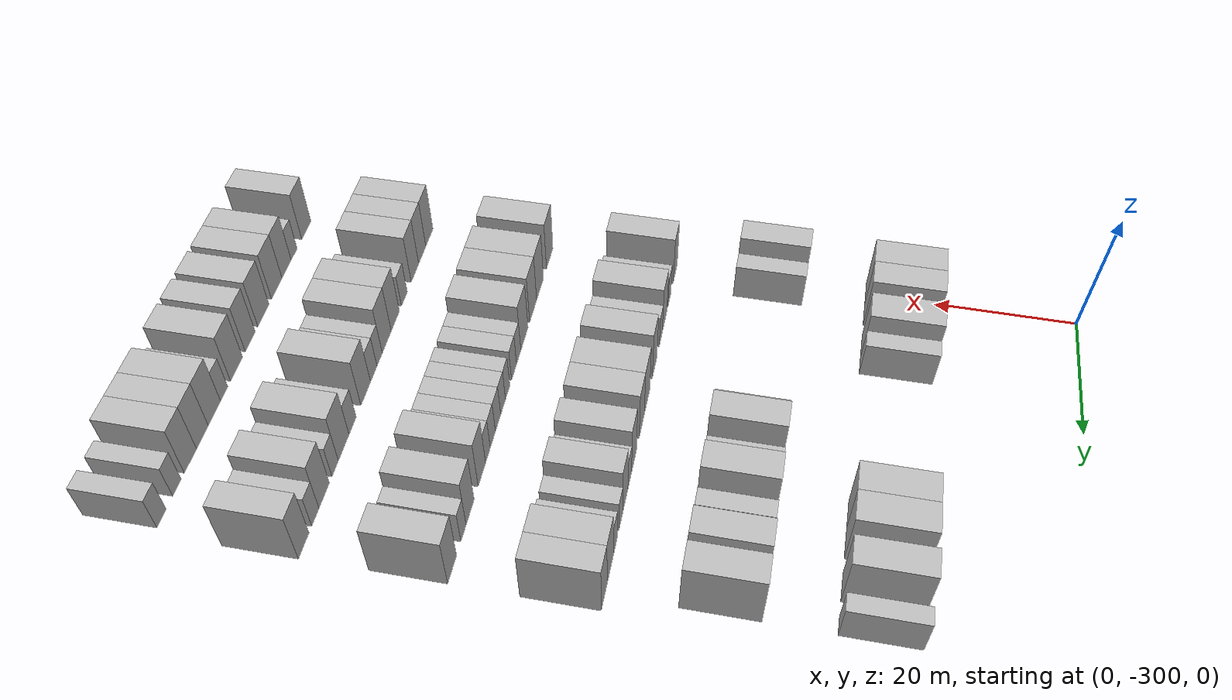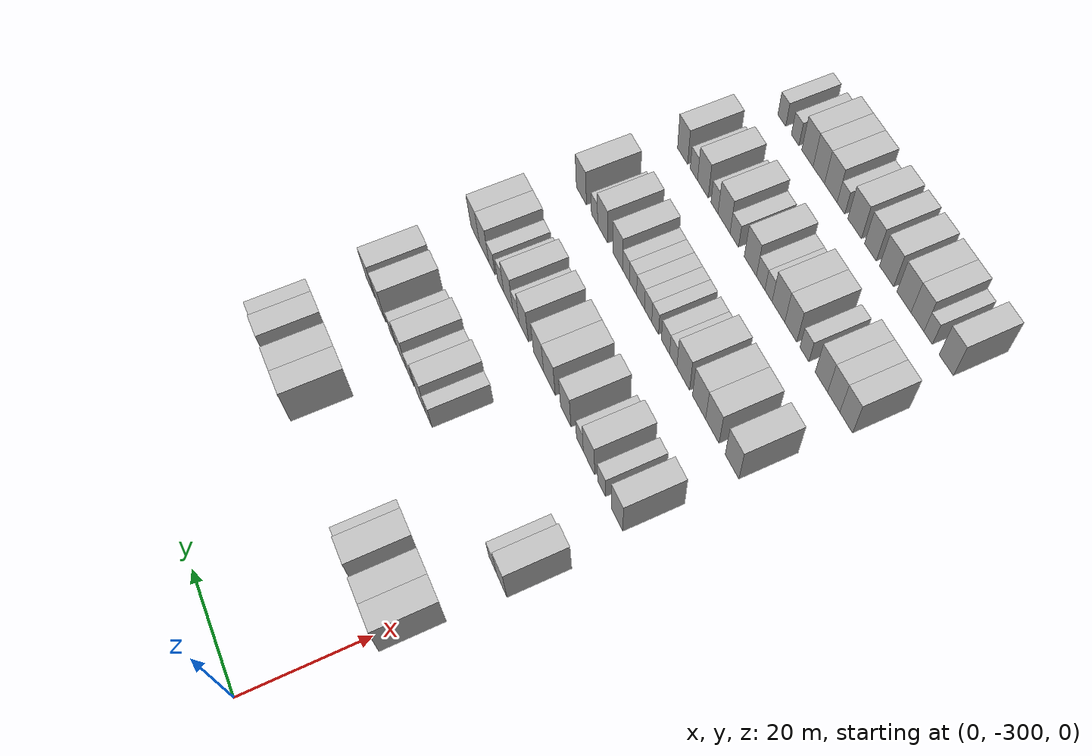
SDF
<sdf version="1.6">
 <world name="default">
  <model name="building_13">
   <static>1</static>
   <pose>25.0000 -300.2436 0 0.000000 0.000000 0.000000</pose>
   <link name="link">
    <pose>0 0 4.50 0 0 0</pose>
    <collision name="collision"><geometry><box><size>10.0000 4.3142 9.0000</size></box></geometry></collision>
    <visual name="visual">
     <cast_shadows>0</cast_shadows>
     <geometry><box><size>10.0000 4.3142 9.0000</size></box></geometry>
     <material>
      <script>
       <uri>model://HANNAS_wall/materials/scripts</uri>
       <uri>model://HANNAS_wall/materials/textures</uri>
       <name>vrc/HANNAS_wall</name>
      </script>
     </material>
    </visual>
   </link>
  </model>
  <model name="building_14">
   <static>1</static>
   <pose>25.0000 -296.0442 0 0.000000 0.000000 0.000000</pose>
   <link name="link">
    <pose>0 0 4.50 0 0 0</pose>
    <collision name="collision"><geometry><box><size>10.0000 4.0846 9.0000</size></box></geometry></collision>
    <visual name="visual">
     <cast_shadows>0</cast_shadows>
     <geometry><box><size>10.0000 4.0846 9.0000</size></box></geometry>
     <material>
      <script>
       <uri>model://HANNAS_wall/materials/scripts</uri>
       <uri>model://HANNAS_wall/materials/textures</uri>
       <name>vrc/HANNAS_wall</name>
      </script>
     </material>
    </visual>
   </link>
  </model>
  <model name="building_15">
   <static>1</static>
   <pose>25.0000 -289.8021 0 0.000000 0.000000 0.000000</pose>
   <link name="link">
    <pose>0 0 4.50 0 0 0</pose>
    <collision name="collision"><geometry><box><size>10.0000 4.3996 9.0000</size></box></geometry></collision>
    <visual name="visual">
     <cast_shadows>0</cast_shadows>
     <geometry><box><size>10.0000 4.3996 9.0000</size></box></geometry>
     <material>
      <script>
       <uri>model://HANNAS_wall/materials/scripts</uri>
       <uri>model://HANNAS_wall/materials/textures</uri>
       <name>vrc/HANNAS_wall</name>
      </script>
     </material>
    </visual>
   </link>
  </model>
  <model name="building_16">
   <static>1</static>
   <pose>25.0000 -286.2306 0 0.000000 0.000000 0.000000</pose>
   <link name="link">
    <pose>0 0 3.00 0 0 0</pose>
    <collision name="collision"><geometry><box><size>10.0000 2.7434 6.0000</size></box></geometry></collision>
    <visual name="visual">
     <cast_shadows>0</cast_shadows>
     <geometry><box><size>10.0000 2.7434 6.0000</size></box></geometry>
     <material>
      <script>
       <uri>model://HANNAS_wall/materials/scripts</uri>
       <uri>model://HANNAS_wall/materials/textures</uri>
       <name>vrc/HANNAS_wall</name>
      </script>
     </material>
    </visual>
   </link>
  </model>
  <model name="building_17">
   <static>1</static>
   <pose>25.0000 -261.4636 0 0.000000 0.000000 0.000000</pose>
   <link name="link">
    <pose>0 0 4.50 0 0 0</pose>
    <collision name="collision"><geometry><box><size>10.0000 4.2635 9.0000</size></box></geometry></collision>
    <visual name="visual">
     <cast_shadows>0</cast_shadows>
     <geometry><box><size>10.0000 4.2635 9.0000</size></box></geometry>
     <material>
      <script>
       <uri>model://HANNAS_wall/materials/scripts</uri>
       <uri>model://HANNAS_wall/materials/textures</uri>
       <name>vrc/HANNAS_wall</name>
      </script>
     </material>
    </visual>
   </link>
  </model>
  <model name="building_18">
   <static>1</static>
   <pose>25.0000 -257.1325 0 0.000000 0.000000 0.000000</pose>
   <link name="link">
    <pose>0 0 4.50 0 0 0</pose>
    <collision name="collision"><geometry><box><size>10.0000 4.3989 9.0000</size></box></geometry></collision>
    <visual name="visual">
     <cast_shadows>0</cast_shadows>
     <geometry><box><size>10.0000 4.3989 9.0000</size></box></geometry>
     <material>
      <script>
       <uri>model://HANNAS_wall/materials/scripts</uri>
       <uri>model://HANNAS_wall/materials/textures</uri>
       <name>vrc/HANNAS_wall</name>
      </script>
     </material>
    </visual>
   </link>
  </model>
  <model name="building_19">
   <static>1</static>
   <pose>25.0000 -250.9067 0 0.000000 0.000000 0.000000</pose>
   <link name="link">
    <pose>0 0 4.50 0 0 0</pose>
    <collision name="collision"><geometry><box><size>10.0000 4.0527 9.0000</size></box></geometry></collision>
    <visual name="visual">
     <cast_shadows>0</cast_shadows>
     <geometry><box><size>10.0000 4.0527 9.0000</size></box></geometry>
     <material>
      <script>
       <uri>model://HANNAS_wall/materials/scripts</uri>
       <uri>model://HANNAS_wall/materials/textures</uri>
       <name>vrc/HANNAS_wall</name>
      </script>
     </material>
    </visual>
   </link>
  </model>
  <model name="building_20">
   <static>1</static>
   <pose>25.0000 -245.6302 0 0.000000 0.000000 0.000000</pose>
   <link name="link">
    <pose>0 0 3.00 0 0 0</pose>
    <collision name="collision"><geometry><box><size>10.0000 2.5002 6.0000</size></box></geometry></collision>
    <visual name="visual">
     <cast_shadows>0</cast_shadows>
     <geometry><box><size>10.0000 2.5002 6.0000</size></box></geometry>
     <material>
      <script>
       <uri>model://HANNAS_wall/materials/scripts</uri>
       <uri>model://HANNAS_wall/materials/textures</uri>
       <name>vrc/HANNAS_wall</name>
      </script>
     </material>
    </visual>
   </link>
  </model>
  <model name="building_187">
   <static>1</static>
   <pose>44.0000 -300.9018 0 0.000000 0.000000 0.000000</pose>
   <link name="link">
    <pose>0 0 4.50 0 0 0</pose>
    <collision name="collision"><geometry><box><size>10.0000 3.7778 9.0000</size></box></geometry></collision>
    <visual name="visual">
     <cast_shadows>0</cast_shadows>
     <geometry><box><size>10.0000 3.7778 9.0000</size></box></geometry>
     <material>
      <script>
       <uri>model://HANNAS_wall/materials/scripts</uri>
       <uri>model://HANNAS_wall/materials/textures</uri>
       <name>vrc/HANNAS_wall</name>
      </script>
     </material>
    </visual>
   </link>
  </model>
  <model name="building_188">
   <static>1</static>
   <pose>44.0000 -297.5915 0 0.000000 0.000000 0.000000</pose>
   <link name="link">
    <pose>0 0 3.00 0 0 0</pose>
    <collision name="collision"><geometry><box><size>10.0000 2.8428 6.0000</size></box></geometry></collision>
    <visual name="visual">
     <cast_shadows>0</cast_shadows>
     <geometry><box><size>10.0000 2.8428 6.0000</size></box></geometry>
     <material>
      <script>
       <uri>model://HANNAS_wall/materials/scripts</uri>
       <uri>model://HANNAS_wall/materials/textures</uri>
       <name>vrc/HANNAS_wall</name>
      </script>
     </material>
    </visual>
   </link>
  </model>
  <model name="building_189">
   <static>1</static>
   <pose>44.0000 -272.3884 0 0.000000 0.000000 0.000000</pose>
   <link name="link">
    <pose>0 0 3.00 0 0 0</pose>
    <collision name="collision"><geometry><box><size>10.0000 2.5211 6.0000</size></box></geometry></collision>
    <visual name="visual">
     <cast_shadows>0</cast_shadows>
     <geometry><box><size>10.0000 2.5211 6.0000</size></box></geometry>
     <material>
      <script>
       <uri>model://HANNAS_wall/materials/scripts</uri>
       <uri>model://HANNAS_wall/materials/textures</uri>
       <name>vrc/HANNAS_wall</name>
      </script>
     </material>
    </visual>
   </link>
  </model>
  <model name="building_190">
   <static>1</static>
   <pose>44.0000 -269.0783 0 0.000000 0.000000 0.000000</pose>
   <link name="link">
    <pose>0 0 4.50 0 0 0</pose>
    <collision name="collision"><geometry><box><size>10.0000 4.0991 9.0000</size></box></geometry></collision>
    <visual name="visual">
     <cast_shadows>0</cast_shadows>
     <geometry><box><size>10.0000 4.0991 9.0000</size></box></geometry>
     <material>
      <script>
       <uri>model://HANNAS_wall/materials/scripts</uri>
       <uri>model://HANNAS_wall/materials/textures</uri>
       <name>vrc/HANNAS_wall</name>
      </script>
     </material>
    </visual>
   </link>
  </model>
  <model name="building_191">
   <static>1</static>
   <pose>44.0000 -264.5740 0 0.000000 0.000000 0.000000</pose>
   <link name="link">
    <pose>0 0 3.00 0 0 0</pose>
    <collision name="collision"><geometry><box><size>10.0000 2.9095 6.0000</size></box></geometry></collision>
    <visual name="visual">
     <cast_shadows>0</cast_shadows>
     <geometry><box><size>10.0000 2.9095 6.0000</size></box></geometry>
     <material>
      <script>
       <uri>model://HANNAS_wall/materials/scripts</uri>
       <uri>model://HANNAS_wall/materials/textures</uri>
       <name>vrc/HANNAS_wall</name>
      </script>
     </material>
    </visual>
   </link>
  </model>
  <model name="building_192">
   <static>1</static>
   <pose>44.0000 -261.0507 0 0.000000 0.000000 0.000000</pose>
   <link name="link">
    <pose>0 0 4.50 0 0 0</pose>
    <collision name="collision"><geometry><box><size>10.0000 4.1371 9.0000</size></box></geometry></collision>
    <visual name="visual">
     <cast_shadows>0</cast_shadows>
     <geometry><box><size>10.0000 4.1371 9.0000</size></box></geometry>
     <material>
      <script>
       <uri>model://HANNAS_wall/materials/scripts</uri>
       <uri>model://HANNAS_wall/materials/textures</uri>
       <name>vrc/HANNAS_wall</name>
      </script>
     </material>
    </visual>
   </link>
  </model>
  <model name="building_193">
   <static>1</static>
   <pose>44.0000 -256.6867 0 0.000000 0.000000 0.000000</pose>
   <link name="link">
    <pose>0 0 3.00 0 0 0</pose>
    <collision name="collision"><geometry><box><size>10.0000 2.5908 6.0000</size></box></geometry></collision>
    <visual name="visual">
     <cast_shadows>0</cast_shadows>
     <geometry><box><size>10.0000 2.5908 6.0000</size></box></geometry>
     <material>
      <script>
       <uri>model://HANNAS_wall/materials/scripts</uri>
       <uri>model://HANNAS_wall/materials/textures</uri>
       <name>vrc/HANNAS_wall</name>
      </script>
     </material>
    </visual>
   </link>
  </model>
  <model name="building_194">
   <static>1</static>
   <pose>44.0000 -251.4506 0 0.000000 0.000000 0.000000</pose>
   <link name="link">
    <pose>0 0 4.50 0 0 0</pose>
    <collision name="collision"><geometry><box><size>10.0000 3.8815 9.0000</size></box></geometry></collision>
    <visual name="visual">
     <cast_shadows>0</cast_shadows>
     <geometry><box><size>10.0000 3.8815 9.0000</size></box></geometry>
     <material>
      <script>
       <uri>model://HANNAS_wall/materials/scripts</uri>
       <uri>model://HANNAS_wall/materials/textures</uri>
       <name>vrc/HANNAS_wall</name>
      </script>
     </material>
    </visual>
   </link>
  </model>
  <model name="building_195">
   <static>1</static>
   <pose>44.0000 -246.4700 0 0.000000 0.000000 0.000000</pose>
   <link name="link">
    <pose>0 0 4.50 0 0 0</pose>
    <collision name="collision"><geometry><box><size>10.0000 4.0797 9.0000</size></box></geometry></collision>
    <visual name="visual">
     <cast_shadows>0</cast_shadows>
     <geometry><box><size>10.0000 4.0797 9.0000</size></box></geometry>
     <material>
      <script>
       <uri>model://HANNAS_wall/materials/scripts</uri>
       <uri>model://HANNAS_wall/materials/textures</uri>
       <name>vrc/HANNAS_wall</name>
      </script>
     </material>
    </visual>
   </link>
  </model>
  <model name="building_354">
   <static>1</static>
   <pose>63.0000 -298.8192 0 0.000000 0.000000 0.000000</pose>
   <link name="link">
    <pose>0 0 4.50 0 0 0</pose>
    <collision name="collision"><geometry><box><size>10.0000 3.9321 9.0000</size></box></geometry></collision>
    <visual name="visual">
     <cast_shadows>0</cast_shadows>
     <geometry><box><size>10.0000 3.9321 9.0000</size></box></geometry>
     <material>
      <script>
       <uri>model://HANNAS_wall/materials/scripts</uri>
       <uri>model://HANNAS_wall/materials/textures</uri>
       <name>vrc/HANNAS_wall</name>
      </script>
     </material>
    </visual>
   </link>
  </model>
  <model name="building_355">
   <static>1</static>
   <pose>63.0000 -293.4392 0 0.000000 0.000000 0.000000</pose>
   <link name="link">
    <pose>0 0 3.00 0 0 0</pose>
    <collision name="collision"><geometry><box><size>10.0000 2.8278 6.0000</size></box></geometry></collision>
    <visual name="visual">
     <cast_shadows>0</cast_shadows>
     <geometry><box><size>10.0000 2.8278 6.0000</size></box></geometry>
     <material>
      <script>
       <uri>model://HANNAS_wall/materials/scripts</uri>
       <uri>model://HANNAS_wall/materials/textures</uri>
       <name>vrc/HANNAS_wall</name>
      </script>
     </material>
    </visual>
   </link>
  </model>
  <model name="building_356">
   <static>1</static>
   <pose>63.0000 -288.9780 0 0.000000 0.000000 0.000000</pose>
   <link name="link">
    <pose>0 0 4.50 0 0 0</pose>
    <collision name="collision"><geometry><box><size>10.0000 4.0947 9.0000</size></box></geometry></collision>
    <visual name="visual">
     <cast_shadows>0</cast_shadows>
     <geometry><box><size>10.0000 4.0947 9.0000</size></box></geometry>
     <material>
      <script>
       <uri>model://HANNAS_wall/materials/scripts</uri>
       <uri>model://HANNAS_wall/materials/textures</uri>
       <name>vrc/HANNAS_wall</name>
      </script>
     </material>
    </visual>
   </link>
  </model>
  <model name="building_357">
   <static>1</static>
   <pose>63.0000 -285.6925 0 0.000000 0.000000 0.000000</pose>
   <link name="link">
    <pose>0 0 3.00 0 0 0</pose>
    <collision name="collision"><geometry><box><size>10.0000 2.4763 6.0000</size></box></geometry></collision>
    <visual name="visual">
     <cast_shadows>0</cast_shadows>
     <geometry><box><size>10.0000 2.4763 6.0000</size></box></geometry>
     <material>
      <script>
       <uri>model://HANNAS_wall/materials/scripts</uri>
       <uri>model://HANNAS_wall/materials/textures</uri>
       <name>vrc/HANNAS_wall</name>
      </script>
     </material>
    </visual>
   </link>
  </model>
  <model name="building_358">
   <static>1</static>
   <pose>63.0000 -280.5148 0 0.000000 0.000000 0.000000</pose>
   <link name="link">
    <pose>0 0 4.50 0 0 0</pose>
    <collision name="collision"><geometry><box><size>10.0000 3.8790 9.0000</size></box></geometry></collision>
    <visual name="visual">
     <cast_shadows>0</cast_shadows>
     <geometry><box><size>10.0000 3.8790 9.0000</size></box></geometry>
     <material>
      <script>
       <uri>model://HANNAS_wall/materials/scripts</uri>
       <uri>model://HANNAS_wall/materials/textures</uri>
       <name>vrc/HANNAS_wall</name>
      </script>
     </material>
    </visual>
   </link>
  </model>
  <model name="building_359">
   <static>1</static>
   <pose>63.0000 -274.3761 0 0.000000 0.000000 0.000000</pose>
   <link name="link">
    <pose>0 0 4.50 0 0 0</pose>
    <collision name="collision"><geometry><box><size>10.0000 4.3984 9.0000</size></box></geometry></collision>
    <visual name="visual">
     <cast_shadows>0</cast_shadows>
     <geometry><box><size>10.0000 4.3984 9.0000</size></box></geometry>
     <material>
      <script>
       <uri>model://HANNAS_wall/materials/scripts</uri>
       <uri>model://HANNAS_wall/materials/textures</uri>
       <name>vrc/HANNAS_wall</name>
      </script>
     </material>
    </visual>
   </link>
  </model>
  <model name="building_360">
   <static>1</static>
   <pose>63.0000 -270.1939 0 0.000000 0.000000 0.000000</pose>
   <link name="link">
    <pose>0 0 4.50 0 0 0</pose>
    <collision name="collision"><geometry><box><size>10.0000 3.9660 9.0000</size></box></geometry></collision>
    <visual name="visual">
     <cast_shadows>0</cast_shadows>
     <geometry><box><size>10.0000 3.9660 9.0000</size></box></geometry>
     <material>
      <script>
       <uri>model://HANNAS_wall/materials/scripts</uri>
       <uri>model://HANNAS_wall/materials/textures</uri>
       <name>vrc/HANNAS_wall</name>
      </script>
     </material>
    </visual>
   </link>
  </model>
  <model name="building_361">
   <static>1</static>
   <pose>63.0000 -264.3541 0 0.000000 0.000000 0.000000</pose>
   <link name="link">
    <pose>0 0 4.50 0 0 0</pose>
    <collision name="collision"><geometry><box><size>10.0000 3.7135 9.0000</size></box></geometry></collision>
    <visual name="visual">
     <cast_shadows>0</cast_shadows>
     <geometry><box><size>10.0000 3.7135 9.0000</size></box></geometry>
     <material>
      <script>
       <uri>model://HANNAS_wall/materials/scripts</uri>
       <uri>model://HANNAS_wall/materials/textures</uri>
       <name>vrc/HANNAS_wall</name>
      </script>
     </material>
    </visual>
   </link>
  </model>
  <model name="building_362">
   <static>1</static>
   <pose>63.0000 -261.2088 0 0.000000 0.000000 0.000000</pose>
   <link name="link">
    <pose>0 0 3.00 0 0 0</pose>
    <collision name="collision"><geometry><box><size>10.0000 2.5772 6.0000</size></box></geometry></collision>
    <visual name="visual">
     <cast_shadows>0</cast_shadows>
     <geometry><box><size>10.0000 2.5772 6.0000</size></box></geometry>
     <material>
      <script>
       <uri>model://HANNAS_wall/materials/scripts</uri>
       <uri>model://HANNAS_wall/materials/textures</uri>
       <name>vrc/HANNAS_wall</name>
      </script>
     </material>
    </visual>
   </link>
  </model>
  <model name="building_363">
   <static>1</static>
   <pose>63.0000 -258.0411 0 0.000000 0.000000 0.000000</pose>
   <link name="link">
    <pose>0 0 4.50 0 0 0</pose>
    <collision name="collision"><geometry><box><size>10.0000 3.7582 9.0000</size></box></geometry></collision>
    <visual name="visual">
     <cast_shadows>0</cast_shadows>
     <geometry><box><size>10.0000 3.7582 9.0000</size></box></geometry>
     <material>
      <script>
       <uri>model://HANNAS_wall/materials/scripts</uri>
       <uri>model://HANNAS_wall/materials/textures</uri>
       <name>vrc/HANNAS_wall</name>
      </script>
     </material>
    </visual>
   </link>
  </model>
  <model name="building_364">
   <static>1</static>
   <pose>63.0000 -254.8826 0 0.000000 0.000000 0.000000</pose>
   <link name="link">
    <pose>0 0 3.00 0 0 0</pose>
    <collision name="collision"><geometry><box><size>10.0000 2.5587 6.0000</size></box></geometry></collision>
    <visual name="visual">
     <cast_shadows>0</cast_shadows>
     <geometry><box><size>10.0000 2.5587 6.0000</size></box></geometry>
     <material>
      <script>
       <uri>model://HANNAS_wall/materials/scripts</uri>
       <uri>model://HANNAS_wall/materials/textures</uri>
       <name>vrc/HANNAS_wall</name>
      </script>
     </material>
    </visual>
   </link>
  </model>
  <model name="building_365">
   <static>1</static>
   <pose>63.0000 -251.2598 0 0.000000 0.000000 0.000000</pose>
   <link name="link">
    <pose>0 0 3.00 0 0 0</pose>
    <collision name="collision"><geometry><box><size>10.0000 2.6868 6.0000</size></box></geometry></collision>
    <visual name="visual">
     <cast_shadows>0</cast_shadows>
     <geometry><box><size>10.0000 2.6868 6.0000</size></box></geometry>
     <material>
      <script>
       <uri>model://HANNAS_wall/materials/scripts</uri>
       <uri>model://HANNAS_wall/materials/textures</uri>
       <name>vrc/HANNAS_wall</name>
      </script>
     </material>
    </visual>
   </link>
  </model>
  <model name="building_366">
   <static>1</static>
   <pose>63.0000 -247.9365 0 0.000000 0.000000 0.000000</pose>
   <link name="link">
    <pose>0 0 4.50 0 0 0</pose>
    <collision name="collision"><geometry><box><size>10.0000 3.9598 9.0000</size></box></geometry></collision>
    <visual name="visual">
     <cast_shadows>0</cast_shadows>
     <geometry><box><size>10.0000 3.9598 9.0000</size></box></geometry>
     <material>
      <script>
       <uri>model://HANNAS_wall/materials/scripts</uri>
       <uri>model://HANNAS_wall/materials/textures</uri>
       <name>vrc/HANNAS_wall</name>
      </script>
     </material>
    </visual>
   </link>
  </model>
  <model name="building_367">
   <static>1</static>
   <pose>63.0000 -244.1201 0 0.000000 0.000000 0.000000</pose>
   <link name="link">
    <pose>0 0 4.50 0 0 0</pose>
    <collision name="collision"><geometry><box><size>10.0000 3.6729 9.0000</size></box></geometry></collision>
    <visual name="visual">
     <cast_shadows>0</cast_shadows>
     <geometry><box><size>10.0000 3.6729 9.0000</size></box></geometry>
     <material>
      <script>
       <uri>model://HANNAS_wall/materials/scripts</uri>
       <uri>model://HANNAS_wall/materials/textures</uri>
       <name>vrc/HANNAS_wall</name>
      </script>
     </material>
    </visual>
   </link>
  </model>
  <model name="building_524">
   <static>1</static>
   <pose>82.0000 -298.4852 0 0.000000 0.000000 0.000000</pose>
   <link name="link">
    <pose>0 0 4.50 0 0 0</pose>
    <collision name="collision"><geometry><box><size>10.0000 4.3851 9.0000</size></box></geometry></collision>
    <visual name="visual">
     <cast_shadows>0</cast_shadows>
     <geometry><box><size>10.0000 4.3851 9.0000</size></box></geometry>
     <material>
      <script>
       <uri>model://HANNAS_wall/materials/scripts</uri>
       <uri>model://HANNAS_wall/materials/textures</uri>
       <name>vrc/HANNAS_wall</name>
      </script>
     </material>
    </visual>
   </link>
  </model>
  <model name="building_525">
   <static>1</static>
   <pose>82.0000 -292.0738 0 0.000000 0.000000 0.000000</pose>
   <link name="link">
    <pose>0 0 4.50 0 0 0</pose>
    <collision name="collision"><geometry><box><size>10.0000 4.4378 9.0000</size></box></geometry></collision>
    <visual name="visual">
     <cast_shadows>0</cast_shadows>
     <geometry><box><size>10.0000 4.4378 9.0000</size></box></geometry>
     <material>
      <script>
       <uri>model://HANNAS_wall/materials/scripts</uri>
       <uri>model://HANNAS_wall/materials/textures</uri>
       <name>vrc/HANNAS_wall</name>
      </script>
     </material>
    </visual>
   </link>
  </model>
  <model name="building_526">
   <static>1</static>
   <pose>82.0000 -287.6563 0 0.000000 0.000000 0.000000</pose>
   <link name="link">
    <pose>0 0 4.50 0 0 0</pose>
    <collision name="collision"><geometry><box><size>10.0000 4.3971 9.0000</size></box></geometry></collision>
    <visual name="visual">
     <cast_shadows>0</cast_shadows>
     <geometry><box><size>10.0000 4.3971 9.0000</size></box></geometry>
     <material>
      <script>
       <uri>model://HANNAS_wall/materials/scripts</uri>
       <uri>model://HANNAS_wall/materials/textures</uri>
       <name>vrc/HANNAS_wall</name>
      </script>
     </material>
    </visual>
   </link>
  </model>
  <model name="building_527">
   <static>1</static>
   <pose>82.0000 -282.2700 0 0.000000 0.000000 0.000000</pose>
   <link name="link">
    <pose>0 0 4.50 0 0 0</pose>
    <collision name="collision"><geometry><box><size>10.0000 4.3756 9.0000</size></box></geometry></collision>
    <visual name="visual">
     <cast_shadows>0</cast_shadows>
     <geometry><box><size>10.0000 4.3756 9.0000</size></box></geometry>
     <material>
      <script>
       <uri>model://HANNAS_wall/materials/scripts</uri>
       <uri>model://HANNAS_wall/materials/textures</uri>
       <name>vrc/HANNAS_wall</name>
      </script>
     </material>
    </visual>
   </link>
  </model>
  <model name="building_528">
   <static>1</static>
   <pose>82.0000 -278.8097 0 0.000000 0.000000 0.000000</pose>
   <link name="link">
    <pose>0 0 3.00 0 0 0</pose>
    <collision name="collision"><geometry><box><size>10.0000 2.5451 6.0000</size></box></geometry></collision>
    <visual name="visual">
     <cast_shadows>0</cast_shadows>
     <geometry><box><size>10.0000 2.5451 6.0000</size></box></geometry>
     <material>
      <script>
       <uri>model://HANNAS_wall/materials/scripts</uri>
       <uri>model://HANNAS_wall/materials/textures</uri>
       <name>vrc/HANNAS_wall</name>
      </script>
     </material>
    </visual>
   </link>
  </model>
  <model name="building_529">
   <static>1</static>
   <pose>82.0000 -276.0883 0 0.000000 0.000000 0.000000</pose>
   <link name="link">
    <pose>0 0 3.00 0 0 0</pose>
    <collision name="collision"><geometry><box><size>10.0000 2.8977 6.0000</size></box></geometry></collision>
    <visual name="visual">
     <cast_shadows>0</cast_shadows>
     <geometry><box><size>10.0000 2.8977 6.0000</size></box></geometry>
     <material>
      <script>
       <uri>model://HANNAS_wall/materials/scripts</uri>
       <uri>model://HANNAS_wall/materials/textures</uri>
       <name>vrc/HANNAS_wall</name>
      </script>
     </material>
    </visual>
   </link>
  </model>
  <model name="building_530">
   <static>1</static>
   <pose>82.0000 -272.4121 0 0.000000 0.000000 0.000000</pose>
   <link name="link">
    <pose>0 0 3.00 0 0 0</pose>
    <collision name="collision"><geometry><box><size>10.0000 2.4547 6.0000</size></box></geometry></collision>
    <visual name="visual">
     <cast_shadows>0</cast_shadows>
     <geometry><box><size>10.0000 2.4547 6.0000</size></box></geometry>
     <material>
      <script>
       <uri>model://HANNAS_wall/materials/scripts</uri>
       <uri>model://HANNAS_wall/materials/textures</uri>
       <name>vrc/HANNAS_wall</name>
      </script>
     </material>
    </visual>
   </link>
  </model>
  <model name="building_531">
   <static>1</static>
   <pose>82.0000 -269.8685 0 0.000000 0.000000 0.000000</pose>
   <link name="link">
    <pose>0 0 3.00 0 0 0</pose>
    <collision name="collision"><geometry><box><size>10.0000 2.6325 6.0000</size></box></geometry></collision>
    <visual name="visual">
     <cast_shadows>0</cast_shadows>
     <geometry><box><size>10.0000 2.6325 6.0000</size></box></geometry>
     <material>
      <script>
       <uri>model://HANNAS_wall/materials/scripts</uri>
       <uri>model://HANNAS_wall/materials/textures</uri>
       <name>vrc/HANNAS_wall</name>
      </script>
     </material>
    </visual>
   </link>
  </model>
  <model name="building_532">
   <static>1</static>
   <pose>82.0000 -267.1010 0 0.000000 0.000000 0.000000</pose>
   <link name="link">
    <pose>0 0 3.00 0 0 0</pose>
    <collision name="collision"><geometry><box><size>10.0000 2.9025 6.0000</size></box></geometry></collision>
    <visual name="visual">
     <cast_shadows>0</cast_shadows>
     <geometry><box><size>10.0000 2.9025 6.0000</size></box></geometry>
     <material>
      <script>
       <uri>model://HANNAS_wall/materials/scripts</uri>
       <uri>model://HANNAS_wall/materials/textures</uri>
       <name>vrc/HANNAS_wall</name>
      </script>
     </material>
    </visual>
   </link>
  </model>
  <model name="building_533">
   <static>1</static>
   <pose>82.0000 -264.2939 0 0.000000 0.000000 0.000000</pose>
   <link name="link">
    <pose>0 0 3.00 0 0 0</pose>
    <collision name="collision"><geometry><box><size>10.0000 2.7118 6.0000</size></box></geometry></collision>
    <visual name="visual">
     <cast_shadows>0</cast_shadows>
     <geometry><box><size>10.0000 2.7118 6.0000</size></box></geometry>
     <material>
      <script>
       <uri>model://HANNAS_wall/materials/scripts</uri>
       <uri>model://HANNAS_wall/materials/textures</uri>
       <name>vrc/HANNAS_wall</name>
      </script>
     </material>
    </visual>
   </link>
  </model>
  <model name="building_534">
   <static>1</static>
   <pose>82.0000 -261.7180 0 0.000000 0.000000 0.000000</pose>
   <link name="link">
    <pose>0 0 3.00 0 0 0</pose>
    <collision name="collision"><geometry><box><size>10.0000 2.4398 6.0000</size></box></geometry></collision>
    <visual name="visual">
     <cast_shadows>0</cast_shadows>
     <geometry><box><size>10.0000 2.4398 6.0000</size></box></geometry>
     <material>
      <script>
       <uri>model://HANNAS_wall/materials/scripts</uri>
       <uri>model://HANNAS_wall/materials/textures</uri>
       <name>vrc/HANNAS_wall</name>
      </script>
     </material>
    </visual>
   </link>
  </model>
  <model name="building_535">
   <static>1</static>
   <pose>82.0000 -258.6051 0 0.000000 0.000000 0.000000</pose>
   <link name="link">
    <pose>0 0 4.50 0 0 0</pose>
    <collision name="collision"><geometry><box><size>10.0000 3.7860 9.0000</size></box></geometry></collision>
    <visual name="visual">
     <cast_shadows>0</cast_shadows>
     <geometry><box><size>10.0000 3.7860 9.0000</size></box></geometry>
     <material>
      <script>
       <uri>model://HANNAS_wall/materials/scripts</uri>
       <uri>model://HANNAS_wall/materials/textures</uri>
       <name>vrc/HANNAS_wall</name>
      </script>
     </material>
    </visual>
   </link>
  </model>
  <model name="building_536">
   <static>1</static>
   <pose>82.0000 -252.7651 0 0.000000 0.000000 0.000000</pose>
   <link name="link">
    <pose>0 0 4.50 0 0 0</pose>
    <collision name="collision"><geometry><box><size>10.0000 3.8939 9.0000</size></box></geometry></collision>
    <visual name="visual">
     <cast_shadows>0</cast_shadows>
     <geometry><box><size>10.0000 3.8939 9.0000</size></box></geometry>
     <material>
      <script>
       <uri>model://HANNAS_wall/materials/scripts</uri>
       <uri>model://HANNAS_wall/materials/textures</uri>
       <name>vrc/HANNAS_wall</name>
      </script>
     </material>
    </visual>
   </link>
  </model>
  <model name="building_537">
   <static>1</static>
   <pose>82.0000 -249.5878 0 0.000000 0.000000 0.000000</pose>
   <link name="link">
    <pose>0 0 3.00 0 0 0</pose>
    <collision name="collision"><geometry><box><size>10.0000 2.4608 6.0000</size></box></geometry></collision>
    <visual name="visual">
     <cast_shadows>0</cast_shadows>
     <geometry><box><size>10.0000 2.4608 6.0000</size></box></geometry>
     <material>
      <script>
       <uri>model://HANNAS_wall/materials/scripts</uri>
       <uri>model://HANNAS_wall/materials/textures</uri>
       <name>vrc/HANNAS_wall</name>
      </script>
     </material>
    </visual>
   </link>
  </model>
  <model name="building_538">
   <static>1</static>
   <pose>82.0000 -244.3367 0 0.000000 0.000000 0.000000</pose>
   <link name="link">
    <pose>0 0 4.50 0 0 0</pose>
    <collision name="collision"><geometry><box><size>10.0000 4.0413 9.0000</size></box></geometry></collision>
    <visual name="visual">
     <cast_shadows>0</cast_shadows>
     <geometry><box><size>10.0000 4.0413 9.0000</size></box></geometry>
     <material>
      <script>
       <uri>model://HANNAS_wall/materials/scripts</uri>
       <uri>model://HANNAS_wall/materials/textures</uri>
       <name>vrc/HANNAS_wall</name>
      </script>
     </material>
    </visual>
   </link>
  </model>
  <model name="building_694">
   <static>1</static>
   <pose>101.0000 -299.3881 0 0.000000 0.000000 0.000000</pose>
   <link name="link">
    <pose>0 0 4.50 0 0 0</pose>
    <collision name="collision"><geometry><box><size>10.0000 3.8534 9.0000</size></box></geometry></collision>
    <visual name="visual">
     <cast_shadows>0</cast_shadows>
     <geometry><box><size>10.0000 3.8534 9.0000</size></box></geometry>
     <material>
      <script>
       <uri>model://HANNAS_wall/materials/scripts</uri>
       <uri>model://HANNAS_wall/materials/textures</uri>
       <name>vrc/HANNAS_wall</name>
      </script>
     </material>
    </visual>
   </link>
  </model>
  <model name="building_695">
   <static>1</static>
   <pose>101.0000 -295.5865 0 0.000000 0.000000 0.000000</pose>
   <link name="link">
    <pose>0 0 4.50 0 0 0</pose>
    <collision name="collision"><geometry><box><size>10.0000 3.7498 9.0000</size></box></geometry></collision>
    <visual name="visual">
     <cast_shadows>0</cast_shadows>
     <geometry><box><size>10.0000 3.7498 9.0000</size></box></geometry>
     <material>
      <script>
       <uri>model://HANNAS_wall/materials/scripts</uri>
       <uri>model://HANNAS_wall/materials/textures</uri>
       <name>vrc/HANNAS_wall</name>
      </script>
     </material>
    </visual>
   </link>
  </model>
  <model name="building_696">
   <static>1</static>
   <pose>101.0000 -291.7988 0 0.000000 0.000000 0.000000</pose>
   <link name="link">
    <pose>0 0 4.50 0 0 0</pose>
    <collision name="collision"><geometry><box><size>10.0000 3.8254 9.0000</size></box></geometry></collision>
    <visual name="visual">
     <cast_shadows>0</cast_shadows>
     <geometry><box><size>10.0000 3.8254 9.0000</size></box></geometry>
     <material>
      <script>
       <uri>model://HANNAS_wall/materials/scripts</uri>
       <uri>model://HANNAS_wall/materials/textures</uri>
       <name>vrc/HANNAS_wall</name>
      </script>
     </material>
    </visual>
   </link>
  </model>
  <model name="building_697">
   <static>1</static>
   <pose>101.0000 -286.4604 0 0.000000 0.000000 0.000000</pose>
   <link name="link">
    <pose>0 0 3.00 0 0 0</pose>
    <collision name="collision"><geometry><box><size>10.0000 2.8515 6.0000</size></box></geometry></collision>
    <visual name="visual">
     <cast_shadows>0</cast_shadows>
     <geometry><box><size>10.0000 2.8515 6.0000</size></box></geometry>
     <material>
      <script>
       <uri>model://HANNAS_wall/materials/scripts</uri>
       <uri>model://HANNAS_wall/materials/textures</uri>
       <name>vrc/HANNAS_wall</name>
      </script>
     </material>
    </visual>
   </link>
  </model>
  <model name="building_698">
   <static>1</static>
   <pose>101.0000 -282.0735 0 0.000000 0.000000 0.000000</pose>
   <link name="link">
    <pose>0 0 4.50 0 0 0</pose>
    <collision name="collision"><geometry><box><size>10.0000 3.9222 9.0000</size></box></geometry></collision>
    <visual name="visual">
     <cast_shadows>0</cast_shadows>
     <geometry><box><size>10.0000 3.9222 9.0000</size></box></geometry>
     <material>
      <script>
       <uri>model://HANNAS_wall/materials/scripts</uri>
       <uri>model://HANNAS_wall/materials/textures</uri>
       <name>vrc/HANNAS_wall</name>
      </script>
     </material>
    </visual>
   </link>
  </model>
  <model name="building_699">
   <static>1</static>
   <pose>101.0000 -278.0278 0 0.000000 0.000000 0.000000</pose>
   <link name="link">
    <pose>0 0 4.50 0 0 0</pose>
    <collision name="collision"><geometry><box><size>10.0000 4.1693 9.0000</size></box></geometry></collision>
    <visual name="visual">
     <cast_shadows>0</cast_shadows>
     <geometry><box><size>10.0000 4.1693 9.0000</size></box></geometry>
     <material>
      <script>
       <uri>model://HANNAS_wall/materials/scripts</uri>
       <uri>model://HANNAS_wall/materials/textures</uri>
       <name>vrc/HANNAS_wall</name>
      </script>
     </material>
    </visual>
   </link>
  </model>
  <model name="building_700">
   <static>1</static>
   <pose>101.0000 -274.7390 0 0.000000 0.000000 0.000000</pose>
   <link name="link">
    <pose>0 0 3.00 0 0 0</pose>
    <collision name="collision"><geometry><box><size>10.0000 2.4083 6.0000</size></box></geometry></collision>
    <visual name="visual">
     <cast_shadows>0</cast_shadows>
     <geometry><box><size>10.0000 2.4083 6.0000</size></box></geometry>
     <material>
      <script>
       <uri>model://HANNAS_wall/materials/scripts</uri>
       <uri>model://HANNAS_wall/materials/textures</uri>
       <name>vrc/HANNAS_wall</name>
      </script>
     </material>
    </visual>
   </link>
  </model>
  <model name="building_701">
   <static>1</static>
   <pose>101.0000 -272.0982 0 0.000000 0.000000 0.000000</pose>
   <link name="link">
    <pose>0 0 3.00 0 0 0</pose>
    <collision name="collision"><geometry><box><size>10.0000 2.8731 6.0000</size></box></geometry></collision>
    <visual name="visual">
     <cast_shadows>0</cast_shadows>
     <geometry><box><size>10.0000 2.8731 6.0000</size></box></geometry>
     <material>
      <script>
       <uri>model://HANNAS_wall/materials/scripts</uri>
       <uri>model://HANNAS_wall/materials/textures</uri>
       <name>vrc/HANNAS_wall</name>
      </script>
     </material>
    </visual>
   </link>
  </model>
  <model name="building_702">
   <static>1</static>
   <pose>101.0000 -268.5738 0 0.000000 0.000000 0.000000</pose>
   <link name="link">
    <pose>0 0 4.50 0 0 0</pose>
    <collision name="collision"><geometry><box><size>10.0000 4.1758 9.0000</size></box></geometry></collision>
    <visual name="visual">
     <cast_shadows>0</cast_shadows>
     <geometry><box><size>10.0000 4.1758 9.0000</size></box></geometry>
     <material>
      <script>
       <uri>model://HANNAS_wall/materials/scripts</uri>
       <uri>model://HANNAS_wall/materials/textures</uri>
       <name>vrc/HANNAS_wall</name>
      </script>
     </material>
    </visual>
   </link>
  </model>
  <model name="building_703">
   <static>1</static>
   <pose>101.0000 -262.9951 0 0.000000 0.000000 0.000000</pose>
   <link name="link">
    <pose>0 0 3.00 0 0 0</pose>
    <collision name="collision"><geometry><box><size>10.0000 2.9817 6.0000</size></box></geometry></collision>
    <visual name="visual">
     <cast_shadows>0</cast_shadows>
     <geometry><box><size>10.0000 2.9817 6.0000</size></box></geometry>
     <material>
      <script>
       <uri>model://HANNAS_wall/materials/scripts</uri>
       <uri>model://HANNAS_wall/materials/textures</uri>
       <name>vrc/HANNAS_wall</name>
      </script>
     </material>
    </visual>
   </link>
  </model>
  <model name="building_704">
   <static>1</static>
   <pose>101.0000 -259.3390 0 0.000000 0.000000 0.000000</pose>
   <link name="link">
    <pose>0 0 4.50 0 0 0</pose>
    <collision name="collision"><geometry><box><size>10.0000 4.3304 9.0000</size></box></geometry></collision>
    <visual name="visual">
     <cast_shadows>0</cast_shadows>
     <geometry><box><size>10.0000 4.3304 9.0000</size></box></geometry>
     <material>
      <script>
       <uri>model://HANNAS_wall/materials/scripts</uri>
       <uri>model://HANNAS_wall/materials/textures</uri>
       <name>vrc/HANNAS_wall</name>
      </script>
     </material>
    </visual>
   </link>
  </model>
  <model name="building_705">
   <static>1</static>
   <pose>101.0000 -255.9096 0 0.000000 0.000000 0.000000</pose>
   <link name="link">
    <pose>0 0 3.00 0 0 0</pose>
    <collision name="collision"><geometry><box><size>10.0000 2.5284 6.0000</size></box></geometry></collision>
    <visual name="visual">
     <cast_shadows>0</cast_shadows>
     <geometry><box><size>10.0000 2.5284 6.0000</size></box></geometry>
     <material>
      <script>
       <uri>model://HANNAS_wall/materials/scripts</uri>
       <uri>model://HANNAS_wall/materials/textures</uri>
       <name>vrc/HANNAS_wall</name>
      </script>
     </material>
    </visual>
   </link>
  </model>
  <model name="building_706">
   <static>1</static>
   <pose>101.0000 -251.6645 0 0.000000 0.000000 0.000000</pose>
   <link name="link">
    <pose>0 0 4.50 0 0 0</pose>
    <collision name="collision"><geometry><box><size>10.0000 3.9618 9.0000</size></box></geometry></collision>
    <visual name="visual">
     <cast_shadows>0</cast_shadows>
     <geometry><box><size>10.0000 3.9618 9.0000</size></box></geometry>
     <material>
      <script>
       <uri>model://HANNAS_wall/materials/scripts</uri>
       <uri>model://HANNAS_wall/materials/textures</uri>
       <name>vrc/HANNAS_wall</name>
      </script>
     </material>
    </visual>
   </link>
  </model>
  <model name="building_707">
   <static>1</static>
   <pose>101.0000 -248.3411 0 0.000000 0.000000 0.000000</pose>
   <link name="link">
    <pose>0 0 3.00 0 0 0</pose>
    <collision name="collision"><geometry><box><size>10.0000 2.6851 6.0000</size></box></geometry></collision>
    <visual name="visual">
     <cast_shadows>0</cast_shadows>
     <geometry><box><size>10.0000 2.6851 6.0000</size></box></geometry>
     <material>
      <script>
       <uri>model://HANNAS_wall/materials/scripts</uri>
       <uri>model://HANNAS_wall/materials/textures</uri>
       <name>vrc/HANNAS_wall</name>
      </script>
     </material>
    </visual>
   </link>
  </model>
  <model name="building_708">
   <static>1</static>
   <pose>101.0000 -244.0908 0 0.000000 0.000000 0.000000</pose>
   <link name="link">
    <pose>0 0 4.50 0 0 0</pose>
    <collision name="collision"><geometry><box><size>10.0000 3.8156 9.0000</size></box></geometry></collision>
    <visual name="visual">
     <cast_shadows>0</cast_shadows>
     <geometry><box><size>10.0000 3.8156 9.0000</size></box></geometry>
     <material>
      <script>
       <uri>model://HANNAS_wall/materials/scripts</uri>
       <uri>model://HANNAS_wall/materials/textures</uri>
       <name>vrc/HANNAS_wall</name>
      </script>
     </material>
    </visual>
   </link>
  </model>
  <model name="building_879">
   <static>1</static>
   <pose>120.0000 -297.4108 0 0.000000 0.000000 0.000000</pose>
   <link name="link">
    <pose>0 0 4.50 0 0 0</pose>
    <collision name="collision"><geometry><box><size>10.0000 4.0801 9.0000</size></box></geometry></collision>
    <visual name="visual">
     <cast_shadows>0</cast_shadows>
     <geometry><box><size>10.0000 4.0801 9.0000</size></box></geometry>
     <material>
      <script>
       <uri>model://HANNAS_wall/materials/scripts</uri>
       <uri>model://HANNAS_wall/materials/textures</uri>
       <name>vrc/HANNAS_wall</name>
      </script>
     </material>
    </visual>
   </link>
  </model>
  <model name="building_880">
   <static>1</static>
   <pose>120.0000 -292.1124 0 0.000000 0.000000 0.000000</pose>
   <link name="link">
    <pose>0 0 3.00 0 0 0</pose>
    <collision name="collision"><geometry><box><size>10.0000 2.5167 6.0000</size></box></geometry></collision>
    <visual name="visual">
     <cast_shadows>0</cast_shadows>
     <geometry><box><size>10.0000 2.5167 6.0000</size></box></geometry>
     <material>
      <script>
       <uri>model://HANNAS_wall/materials/scripts</uri>
       <uri>model://HANNAS_wall/materials/textures</uri>
       <name>vrc/HANNAS_wall</name>
      </script>
     </material>
    </visual>
   </link>
  </model>
  <model name="building_881">
   <static>1</static>
   <pose>120.0000 -288.9330 0 0.000000 0.000000 0.000000</pose>
   <link name="link">
    <pose>0 0 4.50 0 0 0</pose>
    <collision name="collision"><geometry><box><size>10.0000 3.8421 9.0000</size></box></geometry></collision>
    <visual name="visual">
     <cast_shadows>0</cast_shadows>
     <geometry><box><size>10.0000 3.8421 9.0000</size></box></geometry>
     <material>
      <script>
       <uri>model://HANNAS_wall/materials/scripts</uri>
       <uri>model://HANNAS_wall/materials/textures</uri>
       <name>vrc/HANNAS_wall</name>
      </script>
     </material>
    </visual>
   </link>
  </model>
  <model name="building_882">
   <static>1</static>
   <pose>120.0000 -284.8711 0 0.000000 0.000000 0.000000</pose>
   <link name="link">
    <pose>0 0 4.50 0 0 0</pose>
    <collision name="collision"><geometry><box><size>10.0000 4.2818 9.0000</size></box></geometry></collision>
    <visual name="visual">
     <cast_shadows>0</cast_shadows>
     <geometry><box><size>10.0000 4.2818 9.0000</size></box></geometry>
     <material>
      <script>
       <uri>model://HANNAS_wall/materials/scripts</uri>
       <uri>model://HANNAS_wall/materials/textures</uri>
       <name>vrc/HANNAS_wall</name>
      </script>
     </material>
    </visual>
   </link>
  </model>
  <model name="building_883">
   <static>1</static>
   <pose>120.0000 -279.5327 0 0.000000 0.000000 0.000000</pose>
   <link name="link">
    <pose>0 0 4.50 0 0 0</pose>
    <collision name="collision"><geometry><box><size>10.0000 4.3950 9.0000</size></box></geometry></collision>
    <visual name="visual">
     <cast_shadows>0</cast_shadows>
     <geometry><box><size>10.0000 4.3950 9.0000</size></box></geometry>
     <material>
      <script>
       <uri>model://HANNAS_wall/materials/scripts</uri>
       <uri>model://HANNAS_wall/materials/textures</uri>
       <name>vrc/HANNAS_wall</name>
      </script>
     </material>
    </visual>
   </link>
  </model>
  <model name="building_884">
   <static>1</static>
   <pose>120.0000 -274.4464 0 0.000000 0.000000 0.000000</pose>
   <link name="link">
    <pose>0 0 4.50 0 0 0</pose>
    <collision name="collision"><geometry><box><size>10.0000 3.7775 9.0000</size></box></geometry></collision>
    <visual name="visual">
     <cast_shadows>0</cast_shadows>
     <geometry><box><size>10.0000 3.7775 9.0000</size></box></geometry>
     <material>
      <script>
       <uri>model://HANNAS_wall/materials/scripts</uri>
       <uri>model://HANNAS_wall/materials/textures</uri>
       <name>vrc/HANNAS_wall</name>
      </script>
     </material>
    </visual>
   </link>
  </model>
  <model name="building_885">
   <static>1</static>
   <pose>120.0000 -269.3553 0 0.000000 0.000000 0.000000</pose>
   <link name="link">
    <pose>0 0 4.50 0 0 0</pose>
    <collision name="collision"><geometry><box><size>10.0000 4.4049 9.0000</size></box></geometry></collision>
    <visual name="visual">
     <cast_shadows>0</cast_shadows>
     <geometry><box><size>10.0000 4.4049 9.0000</size></box></geometry>
     <material>
      <script>
       <uri>model://HANNAS_wall/materials/scripts</uri>
       <uri>model://HANNAS_wall/materials/textures</uri>
       <name>vrc/HANNAS_wall</name>
      </script>
     </material>
    </visual>
   </link>
  </model>
  <model name="building_886">
   <static>1</static>
   <pose>120.0000 -264.8828 0 0.000000 0.000000 0.000000</pose>
   <link name="link">
    <pose>0 0 3.00 0 0 0</pose>
    <collision name="collision"><geometry><box><size>10.0000 2.5401 6.0000</size></box></geometry></collision>
    <visual name="visual">
     <cast_shadows>0</cast_shadows>
     <geometry><box><size>10.0000 2.5401 6.0000</size></box></geometry>
     <material>
      <script>
       <uri>model://HANNAS_wall/materials/scripts</uri>
       <uri>model://HANNAS_wall/materials/textures</uri>
       <name>vrc/HANNAS_wall</name>
      </script>
     </material>
    </visual>
   </link>
  </model>
  <model name="building_887">
   <static>1</static>
   <pose>120.0000 -261.4942 0 0.000000 0.000000 0.000000</pose>
   <link name="link">
    <pose>0 0 4.50 0 0 0</pose>
    <collision name="collision"><geometry><box><size>10.0000 4.2369 9.0000</size></box></geometry></collision>
    <visual name="visual">
     <cast_shadows>0</cast_shadows>
     <geometry><box><size>10.0000 4.2369 9.0000</size></box></geometry>
     <material>
      <script>
       <uri>model://HANNAS_wall/materials/scripts</uri>
       <uri>model://HANNAS_wall/materials/textures</uri>
       <name>vrc/HANNAS_wall</name>
      </script>
     </material>
    </visual>
   </link>
  </model>
  <model name="building_888">
   <static>1</static>
   <pose>120.0000 -257.4232 0 0.000000 0.000000 0.000000</pose>
   <link name="link">
    <pose>0 0 4.50 0 0 0</pose>
    <collision name="collision"><geometry><box><size>10.0000 3.9051 9.0000</size></box></geometry></collision>
    <visual name="visual">
     <cast_shadows>0</cast_shadows>
     <geometry><box><size>10.0000 3.9051 9.0000</size></box></geometry>
     <material>
      <script>
       <uri>model://HANNAS_wall/materials/scripts</uri>
       <uri>model://HANNAS_wall/materials/textures</uri>
       <name>vrc/HANNAS_wall</name>
      </script>
     </material>
    </visual>
   </link>
  </model>
  <model name="building_889">
   <static>1</static>
   <pose>120.0000 -253.5087 0 0.000000 0.000000 0.000000</pose>
   <link name="link">
    <pose>0 0 4.50 0 0 0</pose>
    <collision name="collision"><geometry><box><size>10.0000 3.9238 9.0000</size></box></geometry></collision>
    <visual name="visual">
     <cast_shadows>0</cast_shadows>
     <geometry><box><size>10.0000 3.9238 9.0000</size></box></geometry>
     <material>
      <script>
       <uri>model://HANNAS_wall/materials/scripts</uri>
       <uri>model://HANNAS_wall/materials/textures</uri>
       <name>vrc/HANNAS_wall</name>
      </script>
     </material>
    </visual>
   </link>
  </model>
  <model name="building_890">
   <static>1</static>
   <pose>120.0000 -249.2235 0 0.000000 0.000000 0.000000</pose>
   <link name="link">
    <pose>0 0 3.00 0 0 0</pose>
    <collision name="collision"><geometry><box><size>10.0000 2.6465 6.0000</size></box></geometry></collision>
    <visual name="visual">
     <cast_shadows>0</cast_shadows>
     <geometry><box><size>10.0000 2.6465 6.0000</size></box></geometry>
     <material>
      <script>
       <uri>model://HANNAS_wall/materials/scripts</uri>
       <uri>model://HANNAS_wall/materials/textures</uri>
       <name>vrc/HANNAS_wall</name>
      </script>
     </material>
    </visual>
   </link>
  </model>
  <model name="building_891">
   <static>1</static>
   <pose>120.0000 -244.4988 0 0.000000 0.000000 0.000000</pose>
   <link name="link">
    <pose>0 0 3.00 0 0 0</pose>
    <collision name="collision"><geometry><box><size>10.0000 2.8028 6.0000</size></box></geometry></collision>
    <visual name="visual">
     <cast_shadows>0</cast_shadows>
     <geometry><box><size>10.0000 2.8028 6.0000</size></box></geometry>
     <material>
      <script>
       <uri>model://HANNAS_wall/materials/scripts</uri>
       <uri>model://HANNAS_wall/materials/textures</uri>
       <name>vrc/HANNAS_wall</name>
      </script>
     </material>
    </visual>
   </link>
  </model>
 </world>
</sdf>
